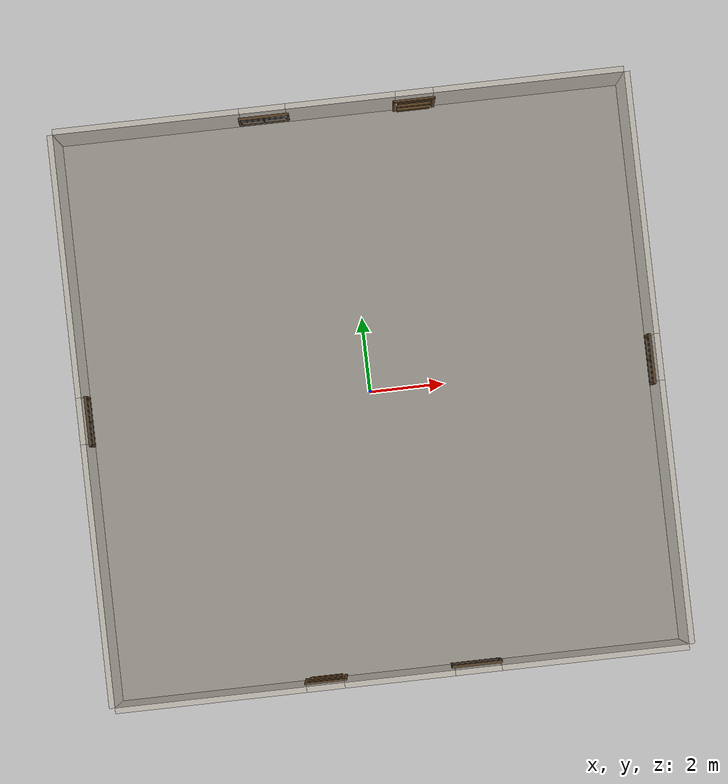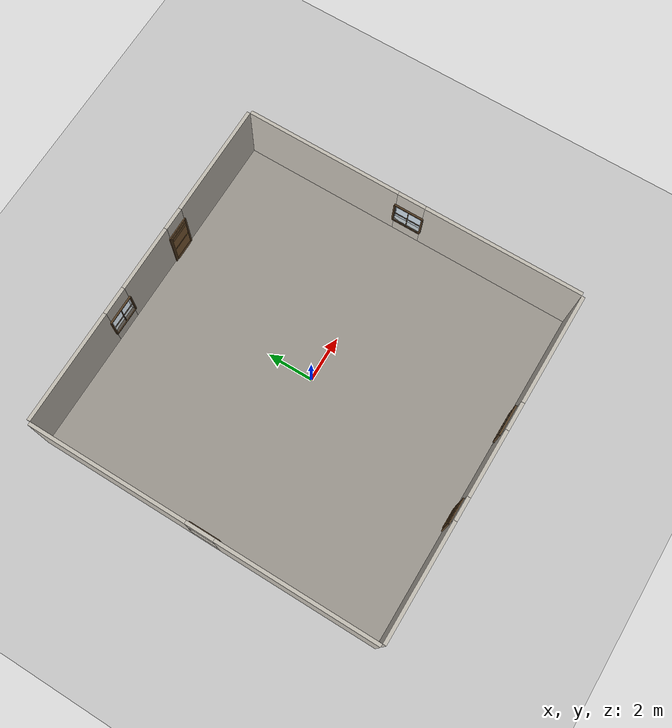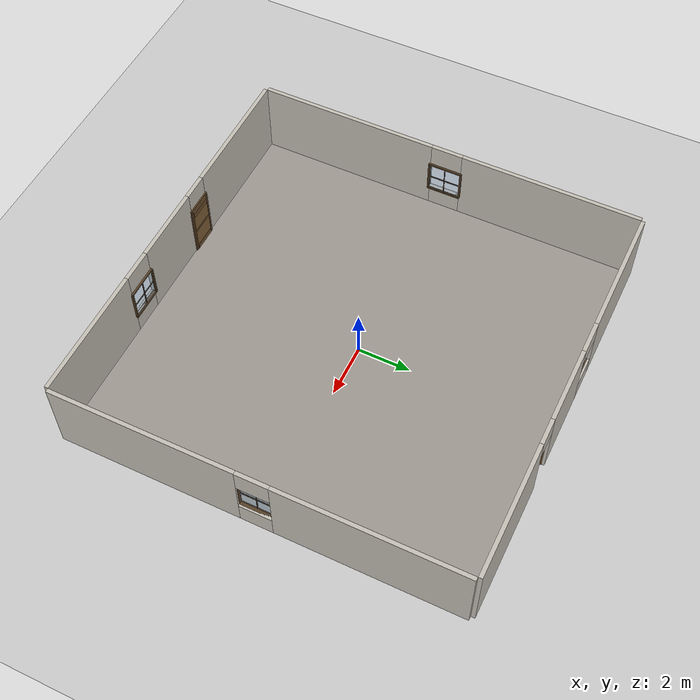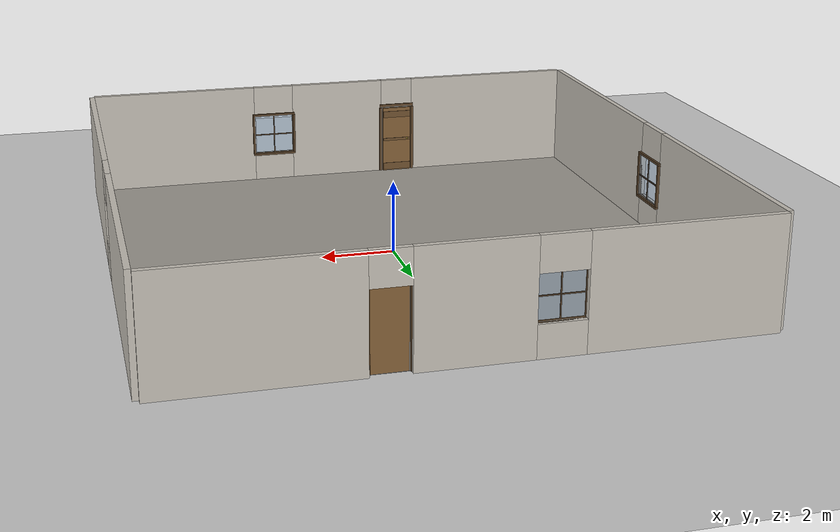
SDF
<?xml version="1.0" ?>
<sdf version='1.6'>
  <world name='clean_office'>

    <!-- ====== PHYSICS & SCENE ====== -->
    <gravity>0 0 -9.8</gravity>
    <physics name='default_physics' default='0' type='ode'>
      <max_step_size>0.001</max_step_size>
      <real_time_factor>1</real_time_factor>
      <real_time_update_rate>1000</real_time_update_rate>
    </physics>
    <scene>
      <ambient>0.5 0.5 0.5 1</ambient>
      <background>0.6 0.6 0.6 1</background>
      <shadows>1</shadows>
    </scene>

    <!-- ====== GROUND PLANE ====== -->
    <model name='ground_plane'>
      <static>1</static>
      <link name='link'>
        <collision name='collision'>
          <geometry><plane><normal>0 0 1</normal><size>100 100</size></plane></geometry>
        </collision>
        <visual name='visual'>
          <cast_shadows>0</cast_shadows>
          <geometry><plane><normal>0 0 1</normal><size>100 100</size></plane></geometry>
          <material><script>
            <uri>file://media/materials/scripts/gazebo.material</uri>
            <name>Gazebo/Grey</name>
          </script></material>
        </visual>
      </link>
    </model>

    <!-- ====== CARPET FLOOR ====== -->
    <model name='office_floor'>
      <static>1</static>
      <pose>0 0 0.005 0 0 0</pose>
      <link name='link'>
        <collision name='collision'>
          <geometry><box><size>15 15 0.01</size></box></geometry>
        </collision>
        <visual name='visual'>
          <geometry><box><size>15 15 0.01</size></box></geometry>
          <material>
            <ambient>0.62 0.60 0.57 1</ambient>
            <diffuse>0.62 0.60 0.57 1</diffuse>
            <specular>0.01 0.01 0.01 1</specular>
          </material>
        </visual>
      </link>
    </model>

    <model name='wall_back'>
      <static>1</static>
      <pose>0 7.575 0 0 0 0</pose>
      <link name='link'>
        <!-- Segment A: solid left -->
        <visual name='vA'><pose>-5.055 0 1.5 0 0 0</pose>
          <geometry><box><size>4.89 0.15 3.0</size></box></geometry>
          <material>
            <ambient>0.78 0.76 0.72 1</ambient>
            <diffuse>0.78 0.76 0.72 1</diffuse>
            <specular>0.02 0.02 0.02 1</specular>
          </material>
        </visual>
        <collision name='cA'><pose>-5.055 0 1.5 0 0 0</pose>
          <geometry><box><size>4.89 0.15 3.0</size></box></geometry></collision>

        <!-- Segment B-bottom: below window gap -->
        <visual name='vBb'><pose>-2.0 0 0.433 0 0 0</pose>
          <geometry><box><size>1.22 0.15 0.866</size></box></geometry>
          <material>
            <ambient>0.78 0.76 0.72 1</ambient>
            <diffuse>0.78 0.76 0.72 1</diffuse>
            <specular>0.02 0.02 0.02 1</specular>
          </material>
        </visual>
        <collision name='cBb'><pose>-2.0 0 0.433 0 0 0</pose>
          <geometry><box><size>1.22 0.15 0.866</size></box></geometry></collision>

        <!-- Segment B-top: above window gap -->
        <visual name='vBt'><pose>-2.0 0 2.543 0 0 0</pose>
          <geometry><box><size>1.22 0.15 0.914</size></box></geometry>
          <material>
            <ambient>0.78 0.76 0.72 1</ambient>
            <diffuse>0.78 0.76 0.72 1</diffuse>
            <specular>0.02 0.02 0.02 1</specular>
          </material>
        </visual>
        <collision name='cBt'><pose>-2.0 0 2.543 0 0 0</pose>
          <geometry><box><size>1.22 0.15 0.914</size></box></geometry></collision>

        <!-- Segment C: solid middle -->
        <visual name='vC'><pose>0.055 0 1.5 0 0 0</pose>
          <geometry><box><size>2.89 0.15 3.0</size></box></geometry>
          <material>
            <ambient>0.78 0.76 0.72 1</ambient>
            <diffuse>0.78 0.76 0.72 1</diffuse>
            <specular>0.02 0.02 0.02 1</specular>
          </material>
        </visual>
        <collision name='cC'><pose>0.055 0 1.5 0 0 0</pose>
          <geometry><box><size>2.89 0.15 3.0</size></box></geometry></collision>

        <!-- Segment D-top: above door gap -->
        <visual name='vDt'><pose>2.0 0 2.55 0 0 0</pose>
          <geometry><box><size>1.0 0.15 0.9</size></box></geometry>
          <material>
            <ambient>0.78 0.76 0.72 1</ambient>
            <diffuse>0.78 0.76 0.72 1</diffuse>
            <specular>0.02 0.02 0.02 1</specular>
          </material>
        </visual>
        <collision name='cDt'><pose>2.0 0 2.55 0 0 0</pose>
          <geometry><box><size>1.0 0.15 0.9</size></box></geometry></collision>

        <!-- Segment E: solid right -->
        <visual name='vE'><pose>5.0 0 1.5 0 0 0</pose>
          <geometry><box><size>5.0 0.15 3.0</size></box></geometry>
          <material>
            <ambient>0.78 0.76 0.72 1</ambient>
            <diffuse>0.78 0.76 0.72 1</diffuse>
            <specular>0.02 0.02 0.02 1</specular>
          </material>
        </visual>
        <collision name='cE'><pose>5.0 0 1.5 0 0 0</pose>
          <geometry><box><size>5.0 0.15 3.0</size></box></geometry></collision>
      </link>
    </model>

    <model name='wall_front'>
      <static>1</static>
      <pose>0 -7.575 0 0 0 0</pose>
      <link name='link'>
        <!-- Segment A: solid left  x=-5..-2.5  cx=-3.75 -->
        <visual name='vA'><pose>-5.0 0 1.5 0 0 0</pose>
          <geometry><box><size>5.0 0.15 3.0</size></box></geometry>
          <material>
            <ambient>0.78 0.76 0.72 1</ambient>
            <diffuse>0.78 0.76 0.72 1</diffuse>
            <specular>0.02 0.02 0.02 1</specular>
          </material>
        </visual>
        <collision name='cA'><pose>-5.0 0 1.5 0 0 0</pose>
          <geometry><box><size>5.0 0.15 3.0</size></box></geometry></collision>

        <!-- Door gap at x=-2.5..-1.5 : top only -->
        <visual name='vDt'><pose>-2.0 0 2.55 0 0 0</pose>
          <geometry><box><size>1.0 0.15 0.9</size></box></geometry>
          <material>
            <ambient>0.78 0.76 0.72 1</ambient>
            <diffuse>0.78 0.76 0.72 1</diffuse>
            <specular>0.02 0.02 0.02 1</specular>
          </material>
        </visual>
        <collision name='cDt'><pose>-2.0 0 2.55 0 0 0</pose>
          <geometry><box><size>1.0 0.15 0.9</size></box></geometry></collision>

        <!-- Segment C: solid middle x=-1.5..+1.5 cx=0 -->
        <visual name='vC'><pose>-0.055 0 1.5 0 0 0</pose>
          <geometry><box><size>2.89 0.15 3.0</size></box></geometry>
          <material>
            <ambient>0.78 0.76 0.72 1</ambient>
            <diffuse>0.78 0.76 0.72 1</diffuse>
            <specular>0.02 0.02 0.02 1</specular>
          </material>
        </visual>
        <collision name='cC'><pose>-0.055 0 1.5 0 0 0</pose>
          <geometry><box><size>2.89 0.15 3.0</size></box></geometry></collision>

        <!-- Window gap at x=+1.5..+2.5 : bottom + top -->
        <visual name='vBb'><pose>2.0 0 0.433 0 0 0</pose>
          <geometry><box><size>1.22 0.15 0.866</size></box></geometry>
          <material>
            <ambient>0.78 0.76 0.72 1</ambient>
            <diffuse>0.78 0.76 0.72 1</diffuse>
            <specular>0.02 0.02 0.02 1</specular>
          </material>
        </visual>
        <collision name='cBb'><pose>2.0 0 0.433 0 0 0</pose>
          <geometry><box><size>1.22 0.15 0.866</size></box></geometry></collision>

        <visual name='vBt'><pose>2.0 0 2.543 0 0 0</pose>
          <geometry><box><size>1.22 0.15 0.914</size></box></geometry>
          <material>
            <ambient>0.78 0.76 0.72 1</ambient>
            <diffuse>0.78 0.76 0.72 1</diffuse>
            <specular>0.02 0.02 0.02 1</specular>
          </material>
        </visual>
        <collision name='cBt'><pose>2.0 0 2.543 0 0 0</pose>
          <geometry><box><size>1.22 0.15 0.914</size></box></geometry></collision>

        <!-- Segment E: solid right x=+2.5..+5 cx=+3.75 -->
        <visual name='vE'><pose>5.055 0 1.5 0 0 0</pose>
          <geometry><box><size>4.89 0.15 3.0</size></box></geometry>
          <material>
            <ambient>0.78 0.76 0.72 1</ambient>
            <diffuse>0.78 0.76 0.72 1</diffuse>
            <specular>0.02 0.02 0.02 1</specular>
          </material>
        </visual>
        <collision name='cE'><pose>5.055 0 1.5 0 0 0</pose>
          <geometry><box><size>4.89 0.15 3.0</size></box></geometry></collision>
      </link>
    </model>

    <model name='wall_right'>
      <static>1</static>
      <pose>7.575 0 0 0 0 0</pose>
      <link name='link'>
        <!-- Segment A -->
        <visual name='vA'><pose>0 -4.055 1.5 0 0 0</pose>
          <geometry><box><size>0.15 6.89 3.0</size></box></geometry>
          <material>
            <ambient>0.78 0.76 0.72 1</ambient>
            <diffuse>0.78 0.76 0.72 1</diffuse>
            <specular>0.02 0.02 0.02 1</specular>
          </material>
        </visual>
        <collision name='cA'><pose>0 -4.055 1.5 0 0 0</pose>
          <geometry><box><size>0.15 6.89 3.0</size></box></geometry></collision>

        <!-- Window gap bottom strip -->
        <visual name='vBb'><pose>0 0 0.433 0 0 0</pose>
          <geometry><box><size>0.15 1.22 0.866</size></box></geometry>
          <material>
            <ambient>0.78 0.76 0.72 1</ambient>
            <diffuse>0.78 0.76 0.72 1</diffuse>
            <specular>0.02 0.02 0.02 1</specular>
          </material>
        </visual>
        <collision name='cBb'><pose>0 0 0.433 0 0 0</pose>
          <geometry><box><size>0.15 1.22 0.866</size></box></geometry></collision>

        <!-- Window gap top strip -->
        <visual name='vBt'><pose>0 0 2.543 0 0 0</pose>
          <geometry><box><size>0.15 1.22 0.914</size></box></geometry>
          <material>
            <ambient>0.78 0.76 0.72 1</ambient>
            <diffuse>0.78 0.76 0.72 1</diffuse>
            <specular>0.02 0.02 0.02 1</specular>
          </material>
        </visual>
        <collision name='cBt'><pose>0 0 2.543 0 0 0</pose>
          <geometry><box><size>0.15 1.22 0.914</size></box></geometry></collision>

        <!-- Segment C -->
        <visual name='vC'><pose>0 4.055 1.5 0 0 0</pose>
          <geometry><box><size>0.15 6.89 3.0</size></box></geometry>
          <material>
            <ambient>0.78 0.76 0.72 1</ambient>
            <diffuse>0.78 0.76 0.72 1</diffuse>
            <specular>0.02 0.02 0.02 1</specular>
          </material>
        </visual>
        <collision name='cC'><pose>0 4.055 1.5 0 0 0</pose>
          <geometry><box><size>0.15 6.89 3.0</size></box></geometry></collision>
      </link>
    </model>

    <model name='wall_left'>
      <static>1</static>
      <pose>-7.575 0 0 0 0 0</pose>
      <link name='link'>
        <visual name='vA'><pose>0 -4.055 1.5 0 0 0</pose>
          <geometry><box><size>0.15 6.89 3.0</size></box></geometry>
          <material>
            <ambient>0.78 0.76 0.72 1</ambient>
            <diffuse>0.78 0.76 0.72 1</diffuse>
            <specular>0.02 0.02 0.02 1</specular>
          </material>
        </visual>
        <collision name='cA'><pose>0 -4.055 1.5 0 0 0</pose>
          <geometry><box><size>0.15 6.89 3.0</size></box></geometry></collision>

        <visual name='vBb'><pose>0 0 0.433 0 0 0</pose>
          <geometry><box><size>0.15 1.22 0.866</size></box></geometry>
          <material>
            <ambient>0.78 0.76 0.72 1</ambient>
            <diffuse>0.78 0.76 0.72 1</diffuse>
            <specular>0.02 0.02 0.02 1</specular>
          </material>
        </visual>
        <collision name='cBb'><pose>0 0 0.433 0 0 0</pose>
          <geometry><box><size>0.15 1.22 0.866</size></box></geometry></collision>

        <visual name='vBt'><pose>0 0 2.543 0 0 0</pose>
          <geometry><box><size>0.15 1.22 0.914</size></box></geometry>
          <material>
            <ambient>0.78 0.76 0.72 1</ambient>
            <diffuse>0.78 0.76 0.72 1</diffuse>
            <specular>0.02 0.02 0.02 1</specular>
          </material>
        </visual>
        <collision name='cBt'><pose>0 0 2.543 0 0 0</pose>
          <geometry><box><size>0.15 1.22 0.914</size></box></geometry></collision>

        <visual name='vC'><pose>0 4.055 1.5 0 0 0</pose>
          <geometry><box><size>0.15 6.89 3.0</size></box></geometry>
          <material>
            <ambient>0.78 0.76 0.72 1</ambient>
            <diffuse>0.78 0.76 0.72 1</diffuse>
            <specular>0.02 0.02 0.02 1</specular>
          </material>
        </visual>
        <collision name='cC'><pose>0 4.055 1.5 0 0 0</pose>
          <geometry><box><size>0.15 6.89 3.0</size></box></geometry></collision>
      </link>
    </model>

    <!-- ── WINDOW 1: Left wall, y=0 ── -->
    <!-- Left wall inner face: x=-5.0. Window faces +X (into room). rot=0 -->
    <model name='window_1'>
      <static>1</static>
      <pose>-7.5 0 0 0 0 0</pose>
      <link name='link'>
        <!-- outer frame top -->
        <visual name='ft'><pose>0 0 2.116 0 0 0</pose>
          <geometry><box><size>0.15 1.32 0.06</size></box></geometry>
          <material><ambient>0.30 0.22 0.14 1</ambient><diffuse>0.35 0.26 0.16 1</diffuse></material>
        </visual>
        <!-- outer frame bottom / sill -->
        <visual name='fb'><pose>0 0 0.836 0 0 0</pose>
          <geometry><box><size>0.15 1.32 0.06</size></box></geometry>
          <material><ambient>0.30 0.22 0.14 1</ambient><diffuse>0.35 0.26 0.16 1</diffuse></material>
        </visual>
        <!-- outer frame left -->
        <visual name='fl'><pose>0 -0.64 1.476 0 0 0</pose>
          <geometry><box><size>0.15 0.06 1.22</size></box></geometry>
          <material><ambient>0.30 0.22 0.14 1</ambient><diffuse>0.35 0.26 0.16 1</diffuse></material>
        </visual>
        <!-- outer frame right -->
        <visual name='fr'><pose>0 0.64 1.476 0 0 0</pose>
          <geometry><box><size>0.15 0.06 1.22</size></box></geometry>
          <material><ambient>0.30 0.22 0.14 1</ambient><diffuse>0.35 0.26 0.16 1</diffuse></material>
        </visual>
        <!-- glass -->
        <visual name='glass'><pose>0.04 0 1.476 0 0 0</pose>
          <geometry><box><size>0.02 1.16 1.16</size></box></geometry>
          <material>
            <ambient>0.55 0.72 0.88 0.35</ambient>
            <diffuse>0.55 0.72 0.88 0.35</diffuse>
            <specular>0.95 0.95 0.95 1</specular>
            <emissive>0.02 0.05 0.08 0</emissive>
          </material>
          <transparency>0.5</transparency>
        </visual>
        <!-- muntin horizontal -->
        <visual name='mh'><pose>0.04 0 1.476 0 0 0</pose>
          <geometry><box><size>0.03 1.16 0.03</size></box></geometry>
          <material><ambient>0.28 0.20 0.12 1</ambient><diffuse>0.33 0.24 0.15 1</diffuse></material>
        </visual>
        <!-- muntin vertical -->
        <visual name='mv'><pose>0.04 0 1.476 0 0 0</pose>
          <geometry><box><size>0.03 0.03 1.16</size></box></geometry>
          <material><ambient>0.28 0.20 0.12 1</ambient><diffuse>0.33 0.24 0.15 1</diffuse></material>
        </visual>
        <collision name='col'><pose>0 0 1.476 0 0 0</pose>
          <geometry><box><size>0.15 1.22 1.22</size></box></geometry>
        </collision>
      </link>
    </model>

    <!-- ── WINDOW 2: Right wall, y=0 ── -->
    <!-- Right wall inner face: x=+5.0. Window faces -X (into room). rot=pi -->
    <model name='window_2'>
      <static>1</static>
      <pose>7.5 0 0 0 0 3.14159</pose>
      <link name='link'>
        <visual name='ft'><pose>0 0 2.116 0 0 0</pose>
          <geometry><box><size>0.15 1.32 0.06</size></box></geometry>
          <material><ambient>0.30 0.22 0.14 1</ambient><diffuse>0.35 0.26 0.16 1</diffuse></material>
        </visual>
        <visual name='fb'><pose>0 0 0.836 0 0 0</pose>
          <geometry><box><size>0.15 1.32 0.06</size></box></geometry>
          <material><ambient>0.30 0.22 0.14 1</ambient><diffuse>0.35 0.26 0.16 1</diffuse></material>
        </visual>
        <visual name='fl'><pose>0 -0.64 1.476 0 0 0</pose>
          <geometry><box><size>0.15 0.06 1.22</size></box></geometry>
          <material><ambient>0.30 0.22 0.14 1</ambient><diffuse>0.35 0.26 0.16 1</diffuse></material>
        </visual>
        <visual name='fr'><pose>0 0.64 1.476 0 0 0</pose>
          <geometry><box><size>0.15 0.06 1.22</size></box></geometry>
          <material><ambient>0.30 0.22 0.14 1</ambient><diffuse>0.35 0.26 0.16 1</diffuse></material>
        </visual>
        <visual name='glass'><pose>0.04 0 1.476 0 0 0</pose>
          <geometry><box><size>0.02 1.16 1.16</size></box></geometry>
          <material>
            <ambient>0.55 0.72 0.88 0.35</ambient>
            <diffuse>0.55 0.72 0.88 0.35</diffuse>
            <specular>0.95 0.95 0.95 1</specular>
            <emissive>0.02 0.05 0.08 0</emissive>
          </material>
          <transparency>0.5</transparency>
        </visual>
        <visual name='mh'><pose>0.04 0 1.476 0 0 0</pose>
          <geometry><box><size>0.03 1.16 0.03</size></box></geometry>
          <material><ambient>0.28 0.20 0.12 1</ambient><diffuse>0.33 0.24 0.15 1</diffuse></material>
        </visual>
        <visual name='mv'><pose>0.04 0 1.476 0 0 0</pose>
          <geometry><box><size>0.03 0.03 1.16</size></box></geometry>
          <material><ambient>0.28 0.20 0.12 1</ambient><diffuse>0.33 0.24 0.15 1</diffuse></material>
        </visual>
        <collision name='col'><pose>0 0 1.476 0 0 0</pose>
          <geometry><box><size>0.15 1.22 1.22</size></box></geometry>
        </collision>
      </link>
    </model>

    <!-- ── WINDOW 3: Back wall, x=-2.0 ── -->
    <!-- Back wall inner face: y=+5.0. Window faces -Y (into room). rot=-pi/2 -->
    <model name='window_3'>
      <static>1</static>
      <pose>-2.0 7.5 0 0 0 -1.5708</pose>
      <link name='link'>
        <visual name='ft'><pose>0 0 2.116 0 0 0</pose>
          <geometry><box><size>0.15 1.32 0.06</size></box></geometry>
          <material><ambient>0.30 0.22 0.14 1</ambient><diffuse>0.35 0.26 0.16 1</diffuse></material>
        </visual>
        <visual name='fb'><pose>0 0 0.836 0 0 0</pose>
          <geometry><box><size>0.15 1.32 0.06</size></box></geometry>
          <material><ambient>0.30 0.22 0.14 1</ambient><diffuse>0.35 0.26 0.16 1</diffuse></material>
        </visual>
        <visual name='fl'><pose>0 -0.64 1.476 0 0 0</pose>
          <geometry><box><size>0.15 0.06 1.22</size></box></geometry>
          <material><ambient>0.30 0.22 0.14 1</ambient><diffuse>0.35 0.26 0.16 1</diffuse></material>
        </visual>
        <visual name='fr'><pose>0 0.64 1.476 0 0 0</pose>
          <geometry><box><size>0.15 0.06 1.22</size></box></geometry>
          <material><ambient>0.30 0.22 0.14 1</ambient><diffuse>0.35 0.26 0.16 1</diffuse></material>
        </visual>
        <visual name='glass'><pose>0.04 0 1.476 0 0 0</pose>
          <geometry><box><size>0.02 1.16 1.16</size></box></geometry>
          <material>
            <ambient>0.55 0.72 0.88 0.35</ambient>
            <diffuse>0.55 0.72 0.88 0.35</diffuse>
            <specular>0.95 0.95 0.95 1</specular>
            <emissive>0.02 0.05 0.08 0</emissive>
          </material>
          <transparency>0.5</transparency>
        </visual>
        <visual name='mh'><pose>0.04 0 1.476 0 0 0</pose>
          <geometry><box><size>0.03 1.16 0.03</size></box></geometry>
          <material><ambient>0.28 0.20 0.12 1</ambient><diffuse>0.33 0.24 0.15 1</diffuse></material>
        </visual>
        <visual name='mv'><pose>0.04 0 1.476 0 0 0</pose>
          <geometry><box><size>0.03 0.03 1.16</size></box></geometry>
          <material><ambient>0.28 0.20 0.12 1</ambient><diffuse>0.33 0.24 0.15 1</diffuse></material>
        </visual>
        <collision name='col'><pose>0 0 1.476 0 0 0</pose>
          <geometry><box><size>0.15 1.22 1.22</size></box></geometry>
        </collision>
      </link>
    </model>

    <!-- ── WINDOW 4: Front wall, x=+2.0 ── -->
    <!-- Front wall inner face: y=-5.0. Window faces +Y (into room). rot=+pi/2 -->
    <model name='window_4'>
      <static>1</static>
      <pose>2.0 -7.5 0 0 0 1.5708</pose>
      <link name='link'>
        <visual name='ft'><pose>0 0 2.116 0 0 0</pose>
          <geometry><box><size>0.15 1.32 0.06</size></box></geometry>
          <material><ambient>0.30 0.22 0.14 1</ambient><diffuse>0.35 0.26 0.16 1</diffuse></material>
        </visual>
        <visual name='fb'><pose>0 0 0.836 0 0 0</pose>
          <geometry><box><size>0.15 1.32 0.06</size></box></geometry>
          <material><ambient>0.30 0.22 0.14 1</ambient><diffuse>0.35 0.26 0.16 1</diffuse></material>
        </visual>
        <visual name='fl'><pose>0 -0.64 1.476 0 0 0</pose>
          <geometry><box><size>0.15 0.06 1.22</size></box></geometry>
          <material><ambient>0.30 0.22 0.14 1</ambient><diffuse>0.35 0.26 0.16 1</diffuse></material>
        </visual>
        <visual name='fr'><pose>0 0.64 1.476 0 0 0</pose>
          <geometry><box><size>0.15 0.06 1.22</size></box></geometry>
          <material><ambient>0.30 0.22 0.14 1</ambient><diffuse>0.35 0.26 0.16 1</diffuse></material>
        </visual>
        <visual name='glass'><pose>0.04 0 1.476 0 0 0</pose>
          <geometry><box><size>0.02 1.16 1.16</size></box></geometry>
          <material>
            <ambient>0.55 0.72 0.88 0.35</ambient>
            <diffuse>0.55 0.72 0.88 0.35</diffuse>
            <specular>0.95 0.95 0.95 1</specular>
            <emissive>0.02 0.05 0.08 0</emissive>
          </material>
          <transparency>0.5</transparency>
        </visual>
        <visual name='mh'><pose>0.04 0 1.476 0 0 0</pose>
          <geometry><box><size>0.03 1.16 0.03</size></box></geometry>
          <material><ambient>0.28 0.20 0.12 1</ambient><diffuse>0.33 0.24 0.15 1</diffuse></material>
        </visual>
        <visual name='mv'><pose>0.04 0 1.476 0 0 0</pose>
          <geometry><box><size>0.03 0.03 1.16</size></box></geometry>
          <material><ambient>0.28 0.20 0.12 1</ambient><diffuse>0.33 0.24 0.15 1</diffuse></material>
        </visual>
        <collision name='col'><pose>0 0 1.476 0 0 0</pose>
          <geometry><box><size>0.15 1.22 1.22</size></box></geometry>
        </collision>
      </link>
    </model>

    <!-- ── DOOR 1: Back wall, x=+2.0 — CLOSED door panel ── -->
    <model name='door_1'>
      <static>1</static>
      <pose>2.0 7.5 0 0 0 -1.5708</pose>
      <link name='link'>
        <!-- wood frame top -->
        <visual name='ft'><pose>0 0 2.17 0 0 0</pose>
          <geometry><box><size>0.10 1.10 0.08</size></box></geometry>
          <material><ambient>0.32 0.24 0.15 1</ambient><diffuse>0.38 0.28 0.17 1</diffuse><specular>0.05 0.05 0.05 1</specular></material>
        </visual>
        <collision name='cft'><pose>0 0 2.17 0 0 0</pose>
          <geometry><box><size>0.10 1.10 0.08</size></box></geometry></collision>
        <!-- wood frame left side -->
        <visual name='fl'><pose>0 -0.52 1.05 0 0 0</pose>
          <geometry><box><size>0.10 0.08 2.10</size></box></geometry>
          <material><ambient>0.32 0.24 0.15 1</ambient><diffuse>0.38 0.28 0.17 1</diffuse><specular>0.05 0.05 0.05 1</specular></material>
        </visual>
        <collision name='cfl'><pose>0 -0.52 1.05 0 0 0</pose>
          <geometry><box><size>0.10 0.08 2.10</size></box></geometry></collision>
        <!-- wood frame right side -->
        <visual name='fr'><pose>0 0.52 1.05 0 0 0</pose>
          <geometry><box><size>0.10 0.08 2.10</size></box></geometry>
          <material><ambient>0.32 0.24 0.15 1</ambient><diffuse>0.38 0.28 0.17 1</diffuse><specular>0.05 0.05 0.05 1</specular></material>
        </visual>
        <collision name='cfr'><pose>0 0.52 1.05 0 0 0</pose>
          <geometry><box><size>0.10 0.08 2.10</size></box></geometry></collision>
        <!-- door panel (closed, flush with wall inner face) -->
        <visual name='panel'><pose>0.03 0 1.05 0 0 0</pose>
          <geometry><box><size>0.06 0.90 2.08</size></box></geometry>
          <material><ambient>0.48 0.34 0.20 1</ambient><diffuse>0.52 0.38 0.22 1</diffuse><specular>0.08 0.07 0.05 1</specular></material>
        </visual>
        <collision name='cpanel'><pose>0.03 0 1.05 0 0 0</pose>
          <geometry><box><size>0.06 0.90 2.08</size></box></geometry></collision>
        <!-- door panel top rail -->
        <visual name='rail_t'><pose>0.04 0 1.88 0 0 0</pose>
          <geometry><box><size>0.07 0.88 0.20</size></box></geometry>
          <material><ambient>0.40 0.28 0.16 1</ambient><diffuse>0.44 0.32 0.19 1</diffuse></material>
        </visual>
        <!-- door panel bottom rail -->
        <visual name='rail_b'><pose>0.04 0 0.15 0 0 0</pose>
          <geometry><box><size>0.07 0.88 0.22</size></box></geometry>
          <material><ambient>0.40 0.28 0.16 1</ambient><diffuse>0.44 0.32 0.19 1</diffuse></material>
        </visual>
        <!-- door panel middle rail -->
        <visual name='rail_m'><pose>0.04 0 1.05 0 0 0</pose>
          <geometry><box><size>0.07 0.88 0.08</size></box></geometry>
          <material><ambient>0.40 0.28 0.16 1</ambient><diffuse>0.44 0.32 0.19 1</diffuse></material>
        </visual>
        <!-- door handle (knob) — room side -->
        <visual name='knob'><pose>0.07 0.35 1.05 0 0 0</pose>
          <geometry><sphere><radius>0.03</radius></sphere></geometry>
          <material><ambient>0.70 0.60 0.20 1</ambient><diffuse>0.75 0.65 0.22 1</diffuse><specular>0.90 0.80 0.30 1</specular></material>
        </visual>
      </link>
    </model>

    <!-- ── DOOR 2: Front wall, x=-2.0 — CLOSED door panel ── -->
    <!--
      Front wall inner face: y=-5.0
      rot=+pi/2 so local +X faces into room (+Y world)
    -->
    <model name='door_2'>
      <static>1</static>
      <pose>-2.0 -7.5 0 0 0 1.5708</pose>
      <link name='link'>
        <!-- wood frame top -->
        <visual name='ft'><pose>0 0 2.17 0 0 0</pose>
          <geometry><box><size>0.10 1.10 0.08</size></box></geometry>
          <material><ambient>0.32 0.24 0.15 1</ambient><diffuse>0.38 0.28 0.17 1</diffuse><specular>0.05 0.05 0.05 1</specular></material>
        </visual>
        <collision name='cft'><pose>0 0 2.17 0 0 0</pose>
          <geometry><box><size>0.10 1.10 0.08</size></box></geometry></collision>
        <!-- wood frame left side -->
        <visual name='fl'><pose>0 -0.52 1.05 0 0 0</pose>
          <geometry><box><size>0.10 0.08 2.10</size></box></geometry>
          <material><ambient>0.32 0.24 0.15 1</ambient><diffuse>0.38 0.28 0.17 1</diffuse><specular>0.05 0.05 0.05 1</specular></material>
        </visual>
        <collision name='cfl'><pose>0 -0.52 1.05 0 0 0</pose>
          <geometry><box><size>0.10 0.08 2.10</size></box></geometry></collision>
        <!-- wood frame right side -->
        <visual name='fr'><pose>0 0.52 1.05 0 0 0</pose>
          <geometry><box><size>0.10 0.08 2.10</size></box></geometry>
          <material><ambient>0.32 0.24 0.15 1</ambient><diffuse>0.38 0.28 0.17 1</diffuse><specular>0.05 0.05 0.05 1</specular></material>
        </visual>
        <collision name='cfr'><pose>0 0.52 1.05 0 0 0</pose>
          <geometry><box><size>0.10 0.08 2.10</size></box></geometry></collision>
        <!-- door panel (closed, flush with wall inner face) -->
        <visual name='panel'><pose>0.03 0 1.05 0 0 0</pose>
          <geometry><box><size>0.06 0.90 2.08</size></box></geometry>
          <material><ambient>0.48 0.34 0.20 1</ambient><diffuse>0.52 0.38 0.22 1</diffuse><specular>0.08 0.07 0.05 1</specular></material>
        </visual>
        <collision name='cpanel'><pose>0.03 0 1.05 0 0 0</pose>
          <geometry><box><size>0.06 0.90 2.08</size></box></geometry></collision>
        <!-- door panel top rail -->
        <visual name='rail_t'><pose>0.04 0 1.88 0 0 0</pose>
          <geometry><box><size>0.07 0.88 0.20</size></box></geometry>
          <material><ambient>0.40 0.28 0.16 1</ambient><diffuse>0.44 0.32 0.19 1</diffuse></material>
        </visual>
        <!-- door panel bottom rail -->
        <visual name='rail_b'><pose>0.04 0 0.15 0 0 0</pose>
          <geometry><box><size>0.07 0.88 0.22</size></box></geometry>
          <material><ambient>0.40 0.28 0.16 1</ambient><diffuse>0.44 0.32 0.19 1</diffuse></material>
        </visual>
        <!-- door panel middle rail -->
        <visual name='rail_m'><pose>0.04 0 1.05 0 0 0</pose>
          <geometry><box><size>0.07 0.88 0.08</size></box></geometry>
          <material><ambient>0.40 0.28 0.16 1</ambient><diffuse>0.44 0.32 0.19 1</diffuse></material>
        </visual>
        <!-- door handle (knob) — room side -->
        <visual name='knob'><pose>0.07 0.35 1.05 0 0 0</pose>
          <geometry><sphere><radius>0.03</radius></sphere></geometry>
          <material><ambient>0.70 0.60 0.20 1</ambient><diffuse>0.75 0.65 0.22 1</diffuse><specular>0.90 0.80 0.30 1</specular></material>
        </visual>
      </link>
    </model>

  </world>
</sdf>
